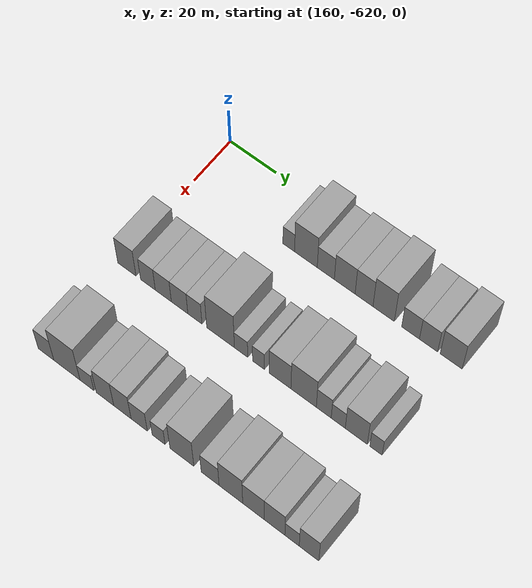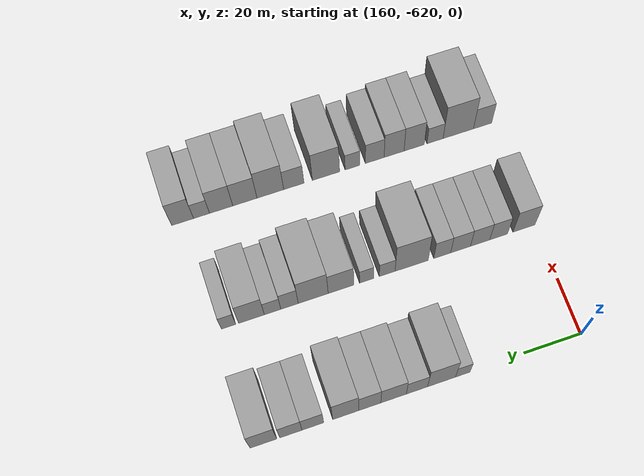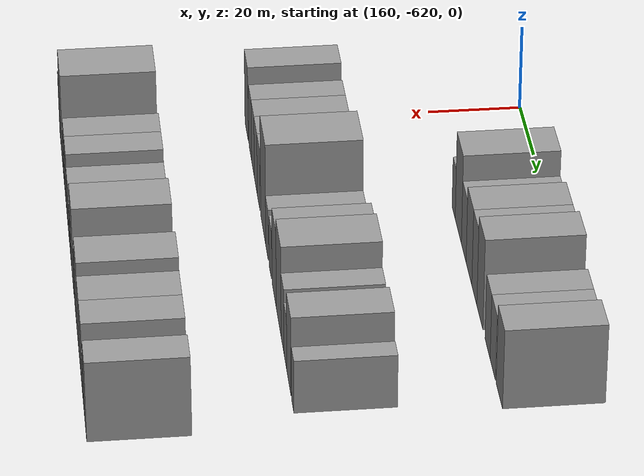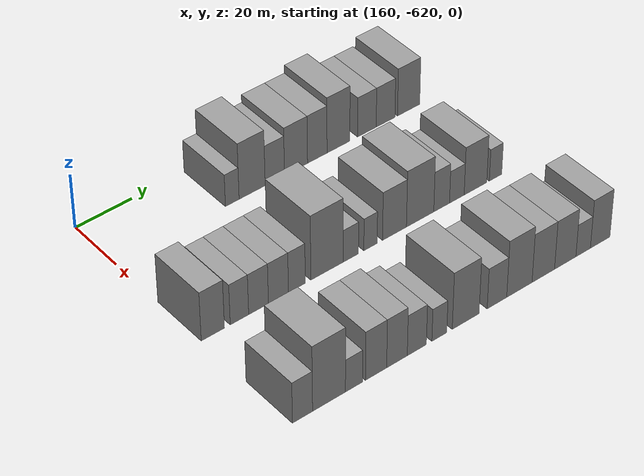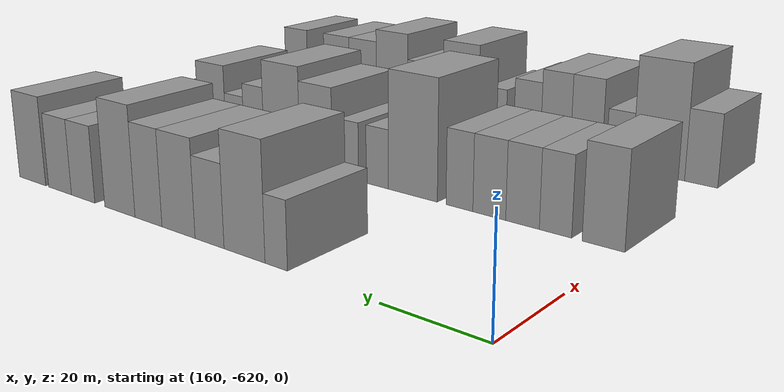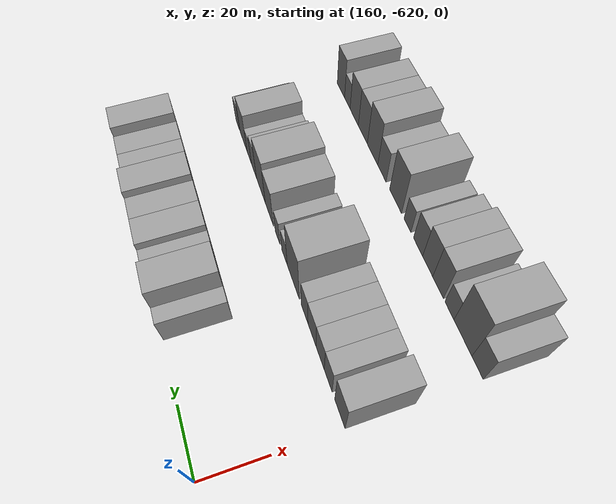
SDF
<sdf version="1.6">
 <world name="default">
  <model name="building_420">
   <static>1</static>
   <pose>170.0000 -578.6938 0 0.000000 0.000000 0.000000</pose>
   <link name="link">
    <pose>0 0 6.00 0 0 0</pose>
    <collision name="collision"><geometry><box><size>20.0000 4.9941 12.0000</size></box></geometry></collision>
    <visual name="visual">
     <cast_shadows>0</cast_shadows>
     <geometry><box><size>20.0000 4.9941 12.0000</size></box></geometry>
     <material>
      <script>
       <uri>model://grey_wall/materials/scripts</uri>
       <uri>model://grey_wall/materials/textures</uri>
       <name>vrc/grey_wall</name>
      </script>
     </material>
    </visual>
   </link>
  </model>
  <model name="building_421">
   <static>1</static>
   <pose>170.0000 -571.3934 0 0.000000 0.000000 0.000000</pose>
   <link name="link">
    <pose>0 0 10.50 0 0 0</pose>
    <collision name="collision"><geometry><box><size>20.0000 9.6065 21.0000</size></box></geometry></collision>
    <visual name="visual">
     <cast_shadows>0</cast_shadows>
     <geometry><box><size>20.0000 9.6065 21.0000</size></box></geometry>
     <material>
      <script>
       <uri>model://grey_wall/materials/scripts</uri>
       <uri>model://grey_wall/materials/textures</uri>
       <name>vrc/grey_wall</name>
      </script>
     </material>
    </visual>
   </link>
  </model>
  <model name="building_422">
   <static>1</static>
   <pose>170.0000 -562.9889 0 0.000000 0.000000 0.000000</pose>
   <link name="link">
    <pose>0 0 7.50 0 0 0</pose>
    <collision name="collision"><geometry><box><size>20.0000 7.2025 15.0000</size></box></geometry></collision>
    <visual name="visual">
     <cast_shadows>0</cast_shadows>
     <geometry><box><size>20.0000 7.2025 15.0000</size></box></geometry>
     <material>
      <script>
       <uri>model://grey_wall/materials/scripts</uri>
       <uri>model://grey_wall/materials/textures</uri>
       <name>vrc/grey_wall</name>
      </script>
     </material>
    </visual>
   </link>
  </model>
  <model name="building_423">
   <static>1</static>
   <pose>170.0000 -555.0589 0 0.000000 0.000000 0.000000</pose>
   <link name="link">
    <pose>0 0 9.00 0 0 0</pose>
    <collision name="collision"><geometry><box><size>20.0000 8.6576 18.0000</size></box></geometry></collision>
    <visual name="visual">
     <cast_shadows>0</cast_shadows>
     <geometry><box><size>20.0000 8.6576 18.0000</size></box></geometry>
     <material>
      <script>
       <uri>model://grey_wall/materials/scripts</uri>
       <uri>model://grey_wall/materials/textures</uri>
       <name>vrc/grey_wall</name>
      </script>
     </material>
    </visual>
   </link>
  </model>
  <model name="building_424">
   <static>1</static>
   <pose>170.0000 -547.0190 0 0.000000 0.000000 0.000000</pose>
   <link name="link">
    <pose>0 0 9.00 0 0 0</pose>
    <collision name="collision"><geometry><box><size>20.0000 7.4223 18.0000</size></box></geometry></collision>
    <visual name="visual">
     <cast_shadows>0</cast_shadows>
     <geometry><box><size>20.0000 7.4223 18.0000</size></box></geometry>
     <material>
      <script>
       <uri>model://grey_wall/materials/scripts</uri>
       <uri>model://grey_wall/materials/textures</uri>
       <name>vrc/grey_wall</name>
      </script>
     </material>
    </visual>
   </link>
  </model>
  <model name="building_425">
   <static>1</static>
   <pose>170.0000 -538.9206 0 0.000000 0.000000 0.000000</pose>
   <link name="link">
    <pose>0 0 10.50 0 0 0</pose>
    <collision name="collision"><geometry><box><size>20.0000 8.7744 21.0000</size></box></geometry></collision>
    <visual name="visual">
     <cast_shadows>0</cast_shadows>
     <geometry><box><size>20.0000 8.7744 21.0000</size></box></geometry>
     <material>
      <script>
       <uri>model://grey_wall/materials/scripts</uri>
       <uri>model://grey_wall/materials/textures</uri>
       <name>vrc/grey_wall</name>
      </script>
     </material>
    </visual>
   </link>
  </model>
  <model name="building_426">
   <static>1</static>
   <pose>170.0000 -527.9152 0 0.000000 0.000000 0.000000</pose>
   <link name="link">
    <pose>0 0 7.50 0 0 0</pose>
    <collision name="collision"><geometry><box><size>20.0000 7.2365 15.0000</size></box></geometry></collision>
    <visual name="visual">
     <cast_shadows>0</cast_shadows>
     <geometry><box><size>20.0000 7.2365 15.0000</size></box></geometry>
     <material>
      <script>
       <uri>model://grey_wall/materials/scripts</uri>
       <uri>model://grey_wall/materials/textures</uri>
       <name>vrc/grey_wall</name>
      </script>
     </material>
    </visual>
   </link>
  </model>
  <model name="building_427">
   <static>1</static>
   <pose>170.0000 -520.6086 0 0.000000 0.000000 0.000000</pose>
   <link name="link">
    <pose>0 0 7.50 0 0 0</pose>
    <collision name="collision"><geometry><box><size>20.0000 7.3767 15.0000</size></box></geometry></collision>
    <visual name="visual">
     <cast_shadows>0</cast_shadows>
     <geometry><box><size>20.0000 7.3767 15.0000</size></box></geometry>
     <material>
      <script>
       <uri>model://grey_wall/materials/scripts</uri>
       <uri>model://grey_wall/materials/textures</uri>
       <name>vrc/grey_wall</name>
      </script>
     </material>
    </visual>
   </link>
  </model>
  <model name="building_428">
   <static>1</static>
   <pose>170.0000 -511.5106 0 0.000000 0.000000 0.000000</pose>
   <link name="link">
    <pose>0 0 9.00 0 0 0</pose>
    <collision name="collision"><geometry><box><size>20.0000 8.8191 18.0000</size></box></geometry></collision>
    <visual name="visual">
     <cast_shadows>0</cast_shadows>
     <geometry><box><size>20.0000 8.8191 18.0000</size></box></geometry>
     <material>
      <script>
       <uri>model://grey_wall/materials/scripts</uri>
       <uri>model://grey_wall/materials/textures</uri>
       <name>vrc/grey_wall</name>
      </script>
     </material>
    </visual>
   </link>
  </model>
  <model name="building_546">
   <static>1</static>
   <pose>210.0000 -616.0182 0 0.000000 0.000000 0.000000</pose>
   <link name="link">
    <pose>0 0 9.00 0 0 0</pose>
    <collision name="collision"><geometry><box><size>20.0000 7.9637 18.0000</size></box></geometry></collision>
    <visual name="visual">
     <cast_shadows>0</cast_shadows>
     <geometry><box><size>20.0000 7.9637 18.0000</size></box></geometry>
     <material>
      <script>
       <uri>model://grey_wall/materials/scripts</uri>
       <uri>model://grey_wall/materials/textures</uri>
       <name>vrc/grey_wall</name>
      </script>
     </material>
    </visual>
   </link>
  </model>
  <model name="building_547">
   <static>1</static>
   <pose>210.0000 -606.8409 0 0.000000 0.000000 0.000000</pose>
   <link name="link">
    <pose>0 0 7.50 0 0 0</pose>
    <collision name="collision"><geometry><box><size>20.0000 6.3908 15.0000</size></box></geometry></collision>
    <visual name="visual">
     <cast_shadows>0</cast_shadows>
     <geometry><box><size>20.0000 6.3908 15.0000</size></box></geometry>
     <material>
      <script>
       <uri>model://grey_wall/materials/scripts</uri>
       <uri>model://grey_wall/materials/textures</uri>
       <name>vrc/grey_wall</name>
      </script>
     </material>
    </visual>
   </link>
  </model>
  <model name="building_548">
   <static>1</static>
   <pose>210.0000 -600.1786 0 0.000000 0.000000 0.000000</pose>
   <link name="link">
    <pose>0 0 7.50 0 0 0</pose>
    <collision name="collision"><geometry><box><size>20.0000 6.9340 15.0000</size></box></geometry></collision>
    <visual name="visual">
     <cast_shadows>0</cast_shadows>
     <geometry><box><size>20.0000 6.9340 15.0000</size></box></geometry>
     <material>
      <script>
       <uri>model://grey_wall/materials/scripts</uri>
       <uri>model://grey_wall/materials/textures</uri>
       <name>vrc/grey_wall</name>
      </script>
     </material>
    </visual>
   </link>
  </model>
  <model name="building_549">
   <static>1</static>
   <pose>210.0000 -593.1725 0 0.000000 0.000000 0.000000</pose>
   <link name="link">
    <pose>0 0 7.50 0 0 0</pose>
    <collision name="collision"><geometry><box><size>20.0000 7.0781 15.0000</size></box></geometry></collision>
    <visual name="visual">
     <cast_shadows>0</cast_shadows>
     <geometry><box><size>20.0000 7.0781 15.0000</size></box></geometry>
     <material>
      <script>
       <uri>model://grey_wall/materials/scripts</uri>
       <uri>model://grey_wall/materials/textures</uri>
       <name>vrc/grey_wall</name>
      </script>
     </material>
    </visual>
   </link>
  </model>
  <model name="building_550">
   <static>1</static>
   <pose>210.0000 -586.6227 0 0.000000 0.000000 0.000000</pose>
   <link name="link">
    <pose>0 0 7.50 0 0 0</pose>
    <collision name="collision"><geometry><box><size>20.0000 6.0215 15.0000</size></box></geometry></collision>
    <visual name="visual">
     <cast_shadows>0</cast_shadows>
     <geometry><box><size>20.0000 6.0215 15.0000</size></box></geometry>
     <material>
      <script>
       <uri>model://grey_wall/materials/scripts</uri>
       <uri>model://grey_wall/materials/textures</uri>
       <name>vrc/grey_wall</name>
      </script>
     </material>
    </visual>
   </link>
  </model>
  <model name="building_551">
   <static>1</static>
   <pose>210.0000 -575.7562 0 0.000000 0.000000 0.000000</pose>
   <link name="link">
    <pose>0 0 12.00 0 0 0</pose>
    <collision name="collision"><geometry><box><size>20.0000 11.7117 24.0000</size></box></geometry></collision>
    <visual name="visual">
     <cast_shadows>0</cast_shadows>
     <geometry><box><size>20.0000 11.7117 24.0000</size></box></geometry>
     <material>
      <script>
       <uri>model://grey_wall/materials/scripts</uri>
       <uri>model://grey_wall/materials/textures</uri>
       <name>vrc/grey_wall</name>
      </script>
     </material>
    </visual>
   </link>
  </model>
  <model name="building_552">
   <static>1</static>
   <pose>210.0000 -567.1115 0 0.000000 0.000000 0.000000</pose>
   <link name="link">
    <pose>0 0 6.00 0 0 0</pose>
    <collision name="collision"><geometry><box><size>20.0000 5.5776 12.0000</size></box></geometry></collision>
    <visual name="visual">
     <cast_shadows>0</cast_shadows>
     <geometry><box><size>20.0000 5.5776 12.0000</size></box></geometry>
     <material>
      <script>
       <uri>model://grey_wall/materials/scripts</uri>
       <uri>model://grey_wall/materials/textures</uri>
       <name>vrc/grey_wall</name>
      </script>
     </material>
    </visual>
   </link>
  </model>
  <model name="building_553">
   <static>1</static>
   <pose>210.0000 -559.8629 0 0.000000 0.000000 0.000000</pose>
   <link name="link">
    <pose>0 0 6.00 0 0 0</pose>
    <collision name="collision"><geometry><box><size>20.0000 4.9197 12.0000</size></box></geometry></collision>
    <visual name="visual">
     <cast_shadows>0</cast_shadows>
     <geometry><box><size>20.0000 4.9197 12.0000</size></box></geometry>
     <material>
      <script>
       <uri>model://grey_wall/materials/scripts</uri>
       <uri>model://grey_wall/materials/textures</uri>
       <name>vrc/grey_wall</name>
      </script>
     </material>
    </visual>
   </link>
  </model>
  <model name="building_554">
   <static>1</static>
   <pose>210.0000 -550.9324 0 0.000000 0.000000 0.000000</pose>
   <link name="link">
    <pose>0 0 9.00 0 0 0</pose>
    <collision name="collision"><geometry><box><size>20.0000 8.9413 18.0000</size></box></geometry></collision>
    <visual name="visual">
     <cast_shadows>0</cast_shadows>
     <geometry><box><size>20.0000 8.9413 18.0000</size></box></geometry>
     <material>
      <script>
       <uri>model://grey_wall/materials/scripts</uri>
       <uri>model://grey_wall/materials/textures</uri>
       <name>vrc/grey_wall</name>
      </script>
     </material>
    </visual>
   </link>
  </model>
  <model name="building_555">
   <static>1</static>
   <pose>210.0000 -541.2759 0 0.000000 0.000000 0.000000</pose>
   <link name="link">
    <pose>0 0 10.50 0 0 0</pose>
    <collision name="collision"><geometry><box><size>20.0000 10.3715 21.0000</size></box></geometry></collision>
    <visual name="visual">
     <cast_shadows>0</cast_shadows>
     <geometry><box><size>20.0000 10.3715 21.0000</size></box></geometry>
     <material>
      <script>
       <uri>model://grey_wall/materials/scripts</uri>
       <uri>model://grey_wall/materials/textures</uri>
       <name>vrc/grey_wall</name>
      </script>
     </material>
    </visual>
   </link>
  </model>
  <model name="building_556">
   <static>1</static>
   <pose>210.0000 -533.0803 0 0.000000 0.000000 0.000000</pose>
   <link name="link">
    <pose>0 0 7.50 0 0 0</pose>
    <collision name="collision"><geometry><box><size>20.0000 6.0197 15.0000</size></box></geometry></collision>
    <visual name="visual">
     <cast_shadows>0</cast_shadows>
     <geometry><box><size>20.0000 6.0197 15.0000</size></box></geometry>
     <material>
      <script>
       <uri>model://grey_wall/materials/scripts</uri>
       <uri>model://grey_wall/materials/textures</uri>
       <name>vrc/grey_wall</name>
      </script>
     </material>
    </visual>
   </link>
  </model>
  <model name="building_557">
   <static>1</static>
   <pose>210.0000 -527.2377 0 0.000000 0.000000 0.000000</pose>
   <link name="link">
    <pose>0 0 6.00 0 0 0</pose>
    <collision name="collision"><geometry><box><size>20.0000 5.6655 12.0000</size></box></geometry></collision>
    <visual name="visual">
     <cast_shadows>0</cast_shadows>
     <geometry><box><size>20.0000 5.6655 12.0000</size></box></geometry>
     <material>
      <script>
       <uri>model://grey_wall/materials/scripts</uri>
       <uri>model://grey_wall/materials/textures</uri>
       <name>vrc/grey_wall</name>
      </script>
     </material>
    </visual>
   </link>
  </model>
  <model name="building_558">
   <static>1</static>
   <pose>210.0000 -519.9972 0 0.000000 0.000000 0.000000</pose>
   <link name="link">
    <pose>0 0 9.00 0 0 0</pose>
    <collision name="collision"><geometry><box><size>20.0000 8.8155 18.0000</size></box></geometry></collision>
    <visual name="visual">
     <cast_shadows>0</cast_shadows>
     <geometry><box><size>20.0000 8.8155 18.0000</size></box></geometry>
     <material>
      <script>
       <uri>model://grey_wall/materials/scripts</uri>
       <uri>model://grey_wall/materials/textures</uri>
       <name>vrc/grey_wall</name>
      </script>
     </material>
    </visual>
   </link>
  </model>
  <model name="building_559">
   <static>1</static>
   <pose>210.0000 -512.1459 0 0.000000 0.000000 0.000000</pose>
   <link name="link">
    <pose>0 0 6.00 0 0 0</pose>
    <collision name="collision"><geometry><box><size>20.0000 4.8871 12.0000</size></box></geometry></collision>
    <visual name="visual">
     <cast_shadows>0</cast_shadows>
     <geometry><box><size>20.0000 4.8871 12.0000</size></box></geometry>
     <material>
      <script>
       <uri>model://grey_wall/materials/scripts</uri>
       <uri>model://grey_wall/materials/textures</uri>
       <name>vrc/grey_wall</name>
      </script>
     </material>
    </visual>
   </link>
  </model>
  <model name="building_680">
   <static>1</static>
   <pose>250.0000 -616.5975 0 0.000000 0.000000 0.000000</pose>
   <link name="link">
    <pose>0 0 7.50 0 0 0</pose>
    <collision name="collision"><geometry><box><size>20.0000 6.8050 15.0000</size></box></geometry></collision>
    <visual name="visual">
     <cast_shadows>0</cast_shadows>
     <geometry><box><size>20.0000 6.8050 15.0000</size></box></geometry>
     <material>
      <script>
       <uri>model://grey_wall/materials/scripts</uri>
       <uri>model://grey_wall/materials/textures</uri>
       <name>vrc/grey_wall</name>
      </script>
     </material>
    </visual>
   </link>
  </model>
  <model name="building_681">
   <static>1</static>
   <pose>250.0000 -607.5562 0 0.000000 0.000000 0.000000</pose>
   <link name="link">
    <pose>0 0 12.00 0 0 0</pose>
    <collision name="collision"><geometry><box><size>20.0000 11.2776 24.0000</size></box></geometry></collision>
    <visual name="visual">
     <cast_shadows>0</cast_shadows>
     <geometry><box><size>20.0000 11.2776 24.0000</size></box></geometry>
     <material>
      <script>
       <uri>model://grey_wall/materials/scripts</uri>
       <uri>model://grey_wall/materials/textures</uri>
       <name>vrc/grey_wall</name>
      </script>
     </material>
    </visual>
   </link>
  </model>
  <model name="building_682">
   <static>1</static>
   <pose>250.0000 -598.9430 0 0.000000 0.000000 0.000000</pose>
   <link name="link">
    <pose>0 0 6.00 0 0 0</pose>
    <collision name="collision"><geometry><box><size>20.0000 5.9488 12.0000</size></box></geometry></collision>
    <visual name="visual">
     <cast_shadows>0</cast_shadows>
     <geometry><box><size>20.0000 5.9488 12.0000</size></box></geometry>
     <material>
      <script>
       <uri>model://grey_wall/materials/scripts</uri>
       <uri>model://grey_wall/materials/textures</uri>
       <name>vrc/grey_wall</name>
      </script>
     </material>
    </visual>
   </link>
  </model>
  <model name="building_683">
   <static>1</static>
   <pose>250.0000 -591.2489 0 0.000000 0.000000 0.000000</pose>
   <link name="link">
    <pose>0 0 9.00 0 0 0</pose>
    <collision name="collision"><geometry><box><size>20.0000 7.4394 18.0000</size></box></geometry></collision>
    <visual name="visual">
     <cast_shadows>0</cast_shadows>
     <geometry><box><size>20.0000 7.4394 18.0000</size></box></geometry>
     <material>
      <script>
       <uri>model://grey_wall/materials/scripts</uri>
       <uri>model://grey_wall/materials/textures</uri>
       <name>vrc/grey_wall</name>
      </script>
     </material>
    </visual>
   </link>
  </model>
  <model name="building_684">
   <static>1</static>
   <pose>250.0000 -583.8803 0 0.000000 0.000000 0.000000</pose>
   <link name="link">
    <pose>0 0 9.00 0 0 0</pose>
    <collision name="collision"><geometry><box><size>20.0000 7.2977 18.0000</size></box></geometry></collision>
    <visual name="visual">
     <cast_shadows>0</cast_shadows>
     <geometry><box><size>20.0000 7.2977 18.0000</size></box></geometry>
     <material>
      <script>
       <uri>model://grey_wall/materials/scripts</uri>
       <uri>model://grey_wall/materials/textures</uri>
       <name>vrc/grey_wall</name>
      </script>
     </material>
    </visual>
   </link>
  </model>
  <model name="building_685">
   <static>1</static>
   <pose>250.0000 -576.8163 0 0.000000 0.000000 0.000000</pose>
   <link name="link">
    <pose>0 0 7.50 0 0 0</pose>
    <collision name="collision"><geometry><box><size>20.0000 6.8302 15.0000</size></box></geometry></collision>
    <visual name="visual">
     <cast_shadows>0</cast_shadows>
     <geometry><box><size>20.0000 6.8302 15.0000</size></box></geometry>
     <material>
      <script>
       <uri>model://grey_wall/materials/scripts</uri>
       <uri>model://grey_wall/materials/textures</uri>
       <name>vrc/grey_wall</name>
      </script>
     </material>
    </visual>
   </link>
  </model>
  <model name="building_686">
   <static>1</static>
   <pose>250.0000 -568.7155 0 0.000000 0.000000 0.000000</pose>
   <link name="link">
    <pose>0 0 6.00 0 0 0</pose>
    <collision name="collision"><geometry><box><size>20.0000 5.3715 12.0000</size></box></geometry></collision>
    <visual name="visual">
     <cast_shadows>0</cast_shadows>
     <geometry><box><size>20.0000 5.3715 12.0000</size></box></geometry>
     <material>
      <script>
       <uri>model://grey_wall/materials/scripts</uri>
       <uri>model://grey_wall/materials/textures</uri>
       <name>vrc/grey_wall</name>
      </script>
     </material>
    </visual>
   </link>
  </model>
  <model name="building_687">
   <static>1</static>
   <pose>250.0000 -559.1120 0 0.000000 0.000000 0.000000</pose>
   <link name="link">
    <pose>0 0 10.50 0 0 0</pose>
    <collision name="collision"><geometry><box><size>20.0000 9.8356 21.0000</size></box></geometry></collision>
    <visual name="visual">
     <cast_shadows>0</cast_shadows>
     <geometry><box><size>20.0000 9.8356 21.0000</size></box></geometry>
     <material>
      <script>
       <uri>model://grey_wall/materials/scripts</uri>
       <uri>model://grey_wall/materials/textures</uri>
       <name>vrc/grey_wall</name>
      </script>
     </material>
    </visual>
   </link>
  </model>
  <model name="building_688">
   <static>1</static>
   <pose>250.0000 -547.5562 0 0.000000 0.000000 0.000000</pose>
   <link name="link">
    <pose>0 0 7.50 0 0 0</pose>
    <collision name="collision"><geometry><box><size>20.0000 7.2759 15.0000</size></box></geometry></collision>
    <visual name="visual">
     <cast_shadows>0</cast_shadows>
     <geometry><box><size>20.0000 7.2759 15.0000</size></box></geometry>
     <material>
      <script>
       <uri>model://grey_wall/materials/scripts</uri>
       <uri>model://grey_wall/materials/textures</uri>
       <name>vrc/grey_wall</name>
      </script>
     </material>
    </visual>
   </link>
  </model>
  <model name="building_689">
   <static>1</static>
   <pose>250.0000 -539.1456 0 0.000000 0.000000 0.000000</pose>
   <link name="link">
    <pose>0 0 10.50 0 0 0</pose>
    <collision name="collision"><geometry><box><size>20.0000 9.5452 21.0000</size></box></geometry></collision>
    <visual name="visual">
     <cast_shadows>0</cast_shadows>
     <geometry><box><size>20.0000 9.5452 21.0000</size></box></geometry>
     <material>
      <script>
       <uri>model://grey_wall/materials/scripts</uri>
       <uri>model://grey_wall/materials/textures</uri>
       <name>vrc/grey_wall</name>
      </script>
     </material>
    </visual>
   </link>
  </model>
  <model name="building_690">
   <static>1</static>
   <pose>250.0000 -530.0743 0 0.000000 0.000000 0.000000</pose>
   <link name="link">
    <pose>0 0 9.00 0 0 0</pose>
    <collision name="collision"><geometry><box><size>20.0000 8.5972 18.0000</size></box></geometry></collision>
    <visual name="visual">
     <cast_shadows>0</cast_shadows>
     <geometry><box><size>20.0000 8.5972 18.0000</size></box></geometry>
     <material>
      <script>
       <uri>model://grey_wall/materials/scripts</uri>
       <uri>model://grey_wall/materials/textures</uri>
       <name>vrc/grey_wall</name>
      </script>
     </material>
    </visual>
   </link>
  </model>
  <model name="building_691">
   <static>1</static>
   <pose>250.0000 -521.6656 0 0.000000 0.000000 0.000000</pose>
   <link name="link">
    <pose>0 0 9.00 0 0 0</pose>
    <collision name="collision"><geometry><box><size>20.0000 8.2203 18.0000</size></box></geometry></collision>
    <visual name="visual">
     <cast_shadows>0</cast_shadows>
     <geometry><box><size>20.0000 8.2203 18.0000</size></box></geometry>
     <material>
      <script>
       <uri>model://grey_wall/materials/scripts</uri>
       <uri>model://grey_wall/materials/textures</uri>
       <name>vrc/grey_wall</name>
      </script>
     </material>
    </visual>
   </link>
  </model>
  <model name="building_692">
   <static>1</static>
   <pose>250.0000 -514.7310 0 0.000000 0.000000 0.000000</pose>
   <link name="link">
    <pose>0 0 6.00 0 0 0</pose>
    <collision name="collision"><geometry><box><size>20.0000 5.6488 12.0000</size></box></geometry></collision>
    <visual name="visual">
     <cast_shadows>0</cast_shadows>
     <geometry><box><size>20.0000 5.6488 12.0000</size></box></geometry>
     <material>
      <script>
       <uri>model://grey_wall/materials/scripts</uri>
       <uri>model://grey_wall/materials/textures</uri>
       <name>vrc/grey_wall</name>
      </script>
     </material>
    </visual>
   </link>
  </model>
  <model name="building_693">
   <static>1</static>
   <pose>250.0000 -508.0712 0 0.000000 0.000000 0.000000</pose>
   <link name="link">
    <pose>0 0 9.00 0 0 0</pose>
    <collision name="collision"><geometry><box><size>20.0000 7.6709 18.0000</size></box></geometry></collision>
    <visual name="visual">
     <cast_shadows>0</cast_shadows>
     <geometry><box><size>20.0000 7.6709 18.0000</size></box></geometry>
     <material>
      <script>
       <uri>model://grey_wall/materials/scripts</uri>
       <uri>model://grey_wall/materials/textures</uri>
       <name>vrc/grey_wall</name>
      </script>
     </material>
    </visual>
   </link>
  </model>
 </world>
</sdf>
